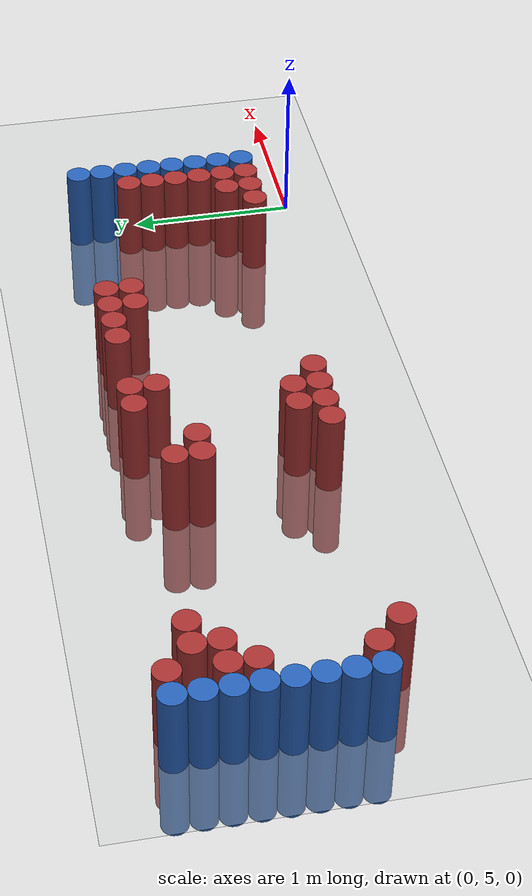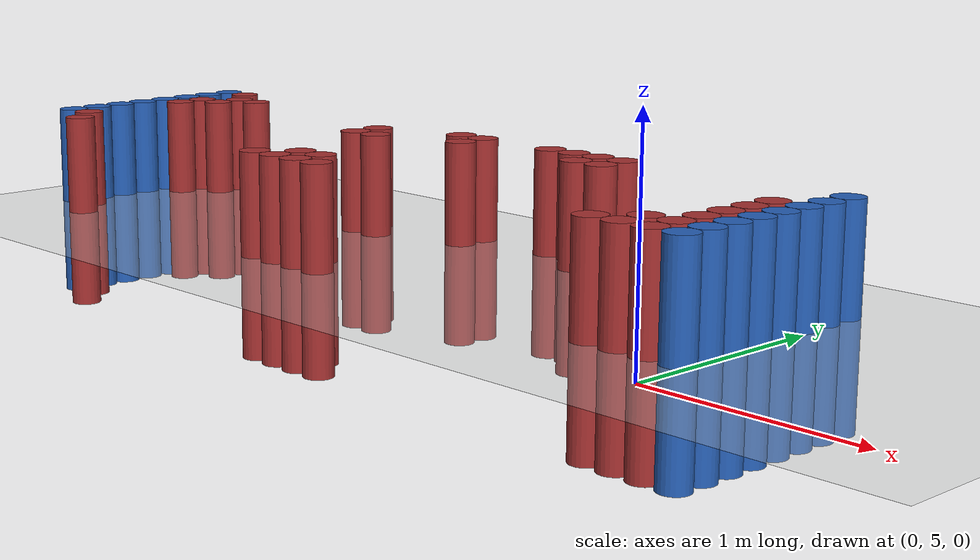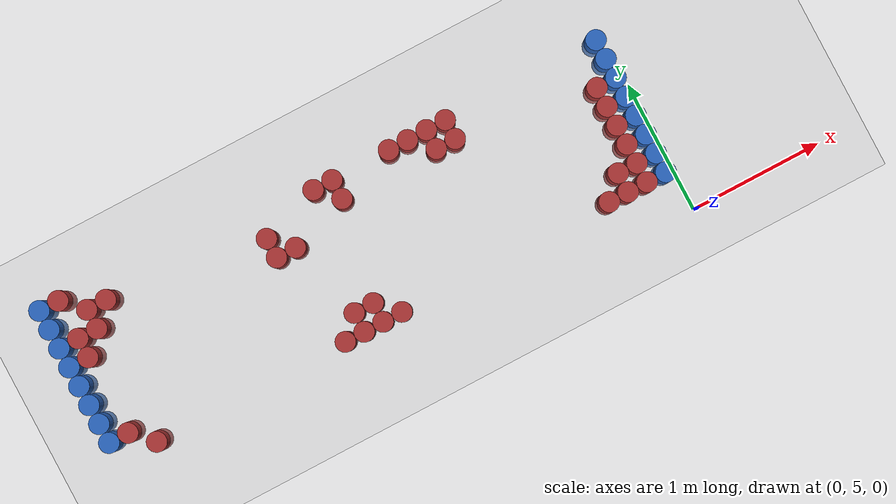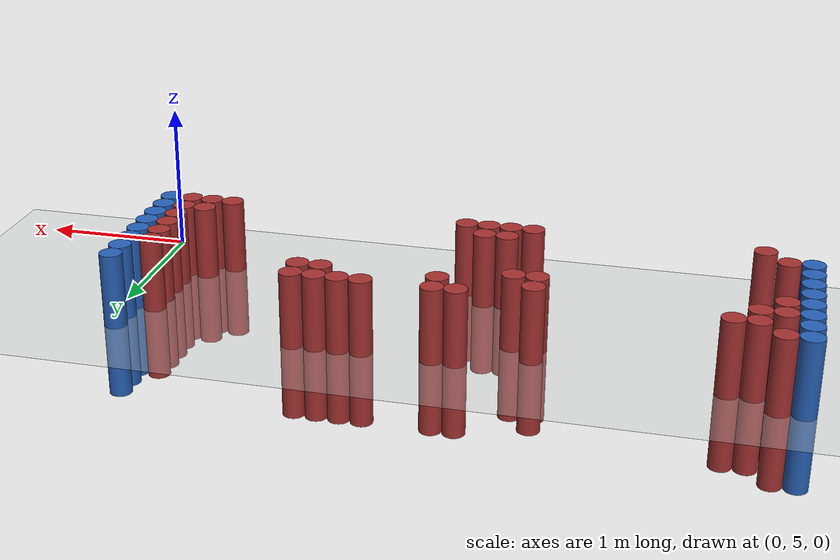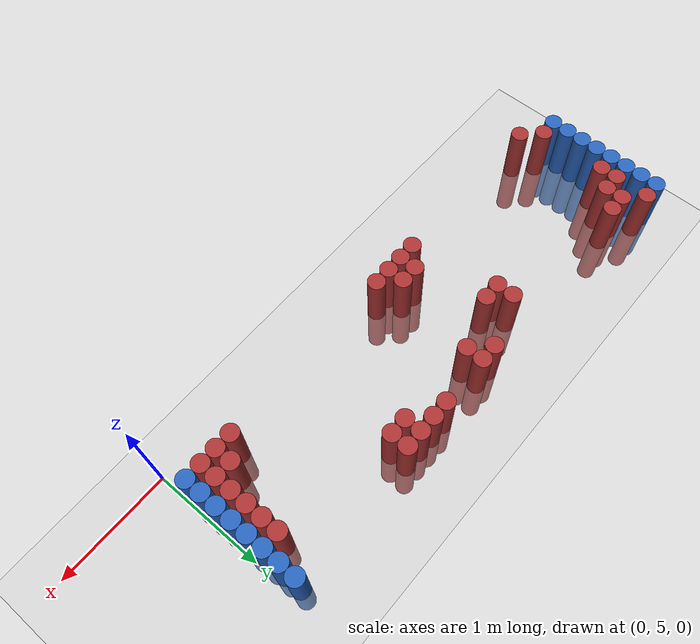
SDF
<sdf version="1.6">
 <world name="default">
  <model name="ground_plane">
   <static>1</static>
   <link name="link">
    <collision name="collision">
     <geometry><plane><normal>0 0 1</normal><size>100 100</size></plane></geometry>
     <surface><friction><ode><mu>100</mu><mu2>50</mu2></ode></friction></surface>
    </collision>
    <visual name="visual">
     <cast_shadows>0</cast_shadows>
     <geometry><plane><normal>0 0 1</normal><size>100 100</size></plane></geometry>
     <material>
      <script><uri>file://media/materials/scripts/gazebo.material</uri><name>Gazebo/Grey</name></script>
     </material>
    </visual>
   </link>
  </model>
  <model name="unit_cylinder_98">
   <static>1</static>
   <pose>-4.425000 5.475000 0.000000 0.000000 0.000000 0.000000</pose>
   <link name="link">
    <inertial>
     <mass>1</mass>
     <inertia><ixx>0.145833</ixx><ixy>0</ixy><ixz>0</ixz><iyy>0.145833</iyy><iyz>0</iyz><izz>0.125</izz></inertia>
    </inertial>
    <collision name="collision">
     <geometry><cylinder><radius>0.075000</radius><length>1</length></cylinder></geometry>
    </collision>
    <visual name="visual">
     <geometry><cylinder><radius>0.075000</radius><length>1</length></cylinder></geometry>
     <material>
      <ambient>0.152000 0.379000 0.720000 1</ambient>
      <diffuse>0.152000 0.379000 0.720000 1</diffuse>
     </material>
     <material>
      <script><name>Gazebo/Grey</name><uri>file://media/materials/scripts/gazebo.material</uri></script>
     </material>
    </visual>
   </link>
  </model>
  <model name="unit_cylinder_99">
   <static>1</static>
   <pose>-4.425000 5.625000 0.000000 0.000000 0.000000 0.000000</pose>
   <link name="link">
    <inertial>
     <mass>1</mass>
     <inertia><ixx>0.145833</ixx><ixy>0</ixy><ixz>0</ixz><iyy>0.145833</iyy><iyz>0</iyz><izz>0.125</izz></inertia>
    </inertial>
    <collision name="collision">
     <geometry><cylinder><radius>0.075000</radius><length>1</length></cylinder></geometry>
    </collision>
    <visual name="visual">
     <geometry><cylinder><radius>0.075000</radius><length>1</length></cylinder></geometry>
     <material>
      <ambient>0.152000 0.379000 0.720000 1</ambient>
      <diffuse>0.152000 0.379000 0.720000 1</diffuse>
     </material>
     <material>
      <script><name>Gazebo/Grey</name><uri>file://media/materials/scripts/gazebo.material</uri></script>
     </material>
    </visual>
   </link>
  </model>
  <model name="unit_cylinder_100">
   <static>1</static>
   <pose>-4.425000 5.775000 0.000000 0.000000 0.000000 0.000000</pose>
   <link name="link">
    <inertial>
     <mass>1</mass>
     <inertia><ixx>0.145833</ixx><ixy>0</ixy><ixz>0</ixz><iyy>0.145833</iyy><iyz>0</iyz><izz>0.125</izz></inertia>
    </inertial>
    <collision name="collision">
     <geometry><cylinder><radius>0.075000</radius><length>1</length></cylinder></geometry>
    </collision>
    <visual name="visual">
     <geometry><cylinder><radius>0.075000</radius><length>1</length></cylinder></geometry>
     <material>
      <ambient>0.152000 0.379000 0.720000 1</ambient>
      <diffuse>0.152000 0.379000 0.720000 1</diffuse>
     </material>
     <material>
      <script><name>Gazebo/Grey</name><uri>file://media/materials/scripts/gazebo.material</uri></script>
     </material>
    </visual>
   </link>
  </model>
  <model name="unit_cylinder_101">
   <static>1</static>
   <pose>-4.425000 5.925000 0.000000 0.000000 0.000000 0.000000</pose>
   <link name="link">
    <inertial>
     <mass>1</mass>
     <inertia><ixx>0.145833</ixx><ixy>0</ixy><ixz>0</ixz><iyy>0.145833</iyy><iyz>0</iyz><izz>0.125</izz></inertia>
    </inertial>
    <collision name="collision">
     <geometry><cylinder><radius>0.075000</radius><length>1</length></cylinder></geometry>
    </collision>
    <visual name="visual">
     <geometry><cylinder><radius>0.075000</radius><length>1</length></cylinder></geometry>
     <material>
      <ambient>0.152000 0.379000 0.720000 1</ambient>
      <diffuse>0.152000 0.379000 0.720000 1</diffuse>
     </material>
     <material>
      <script><name>Gazebo/Grey</name><uri>file://media/materials/scripts/gazebo.material</uri></script>
     </material>
    </visual>
   </link>
  </model>
  <model name="unit_cylinder_102">
   <static>1</static>
   <pose>-4.425000 6.075000 0.000000 0.000000 0.000000 0.000000</pose>
   <link name="link">
    <inertial>
     <mass>1</mass>
     <inertia><ixx>0.145833</ixx><ixy>0</ixy><ixz>0</ixz><iyy>0.145833</iyy><iyz>0</iyz><izz>0.125</izz></inertia>
    </inertial>
    <collision name="collision">
     <geometry><cylinder><radius>0.075000</radius><length>1</length></cylinder></geometry>
    </collision>
    <visual name="visual">
     <geometry><cylinder><radius>0.075000</radius><length>1</length></cylinder></geometry>
     <material>
      <ambient>0.152000 0.379000 0.720000 1</ambient>
      <diffuse>0.152000 0.379000 0.720000 1</diffuse>
     </material>
     <material>
      <script><name>Gazebo/Grey</name><uri>file://media/materials/scripts/gazebo.material</uri></script>
     </material>
    </visual>
   </link>
  </model>
  <model name="unit_cylinder_103">
   <static>1</static>
   <pose>-4.425000 6.225000 0.000000 0.000000 0.000000 0.000000</pose>
   <link name="link">
    <inertial>
     <mass>1</mass>
     <inertia><ixx>0.145833</ixx><ixy>0</ixy><ixz>0</ixz><iyy>0.145833</iyy><iyz>0</iyz><izz>0.125</izz></inertia>
    </inertial>
    <collision name="collision">
     <geometry><cylinder><radius>0.075000</radius><length>1</length></cylinder></geometry>
    </collision>
    <visual name="visual">
     <geometry><cylinder><radius>0.075000</radius><length>1</length></cylinder></geometry>
     <material>
      <ambient>0.152000 0.379000 0.720000 1</ambient>
      <diffuse>0.152000 0.379000 0.720000 1</diffuse>
     </material>
     <material>
      <script><name>Gazebo/Grey</name><uri>file://media/materials/scripts/gazebo.material</uri></script>
     </material>
    </visual>
   </link>
  </model>
  <model name="unit_cylinder_104">
   <static>1</static>
   <pose>-4.425000 6.375000 0.000000 0.000000 0.000000 0.000000</pose>
   <link name="link">
    <inertial>
     <mass>1</mass>
     <inertia><ixx>0.145833</ixx><ixy>0</ixy><ixz>0</ixz><iyy>0.145833</iyy><iyz>0</iyz><izz>0.125</izz></inertia>
    </inertial>
    <collision name="collision">
     <geometry><cylinder><radius>0.075000</radius><length>1</length></cylinder></geometry>
    </collision>
    <visual name="visual">
     <geometry><cylinder><radius>0.075000</radius><length>1</length></cylinder></geometry>
     <material>
      <ambient>0.152000 0.379000 0.720000 1</ambient>
      <diffuse>0.152000 0.379000 0.720000 1</diffuse>
     </material>
     <material>
      <script><name>Gazebo/Grey</name><uri>file://media/materials/scripts/gazebo.material</uri></script>
     </material>
    </visual>
   </link>
  </model>
  <model name="unit_cylinder_105">
   <static>1</static>
   <pose>-4.425000 6.525000 0.000000 0.000000 0.000000 0.000000</pose>
   <link name="link">
    <inertial>
     <mass>1</mass>
     <inertia><ixx>0.145833</ixx><ixy>0</ixy><ixz>0</ixz><iyy>0.145833</iyy><iyz>0</iyz><izz>0.125</izz></inertia>
    </inertial>
    <collision name="collision">
     <geometry><cylinder><radius>0.075000</radius><length>1</length></cylinder></geometry>
    </collision>
    <visual name="visual">
     <geometry><cylinder><radius>0.075000</radius><length>1</length></cylinder></geometry>
     <material>
      <ambient>0.152000 0.379000 0.720000 1</ambient>
      <diffuse>0.152000 0.379000 0.720000 1</diffuse>
     </material>
     <material>
      <script><name>Gazebo/Grey</name><uri>file://media/materials/scripts/gazebo.material</uri></script>
     </material>
    </visual>
   </link>
  </model>
  <model name="unit_cylinder_128">
   <static>1</static>
   <pose>-4.275000 5.475000 0.000000 0.000000 0.000000 0.000000</pose>
   <link name="link">
    <inertial>
     <mass>1</mass>
     <inertia><ixx>0.145833</ixx><ixy>0</ixy><ixz>0</ixz><iyy>0.145833</iyy><iyz>0</iyz><izz>0.125</izz></inertia>
    </inertial>
    <collision name="collision">
     <geometry><cylinder><radius>0.075000</radius><length>1</length></cylinder></geometry>
    </collision>
    <visual name="visual">
     <geometry><cylinder><radius>0.075000</radius><length>1</length></cylinder></geometry>
     <material>
      <ambient>0.648000 0.192000 0.192000 1</ambient>
      <diffuse>0.648000 0.192000 0.192000 1</diffuse>
     </material>
     <material>
      <script><name>Gazebo/Grey</name><uri>file://media/materials/scripts/gazebo.material</uri></script>
     </material>
    </visual>
   </link>
  </model>
  <model name="unit_cylinder_129">
   <static>1</static>
   <pose>-4.275000 6.075000 0.000000 0.000000 0.000000 0.000000</pose>
   <link name="link">
    <inertial>
     <mass>1</mass>
     <inertia><ixx>0.145833</ixx><ixy>0</ixy><ixz>0</ixz><iyy>0.145833</iyy><iyz>0</iyz><izz>0.125</izz></inertia>
    </inertial>
    <collision name="collision">
     <geometry><cylinder><radius>0.075000</radius><length>1</length></cylinder></geometry>
    </collision>
    <visual name="visual">
     <geometry><cylinder><radius>0.075000</radius><length>1</length></cylinder></geometry>
     <material>
      <ambient>0.648000 0.192000 0.192000 1</ambient>
      <diffuse>0.648000 0.192000 0.192000 1</diffuse>
     </material>
     <material>
      <script><name>Gazebo/Grey</name><uri>file://media/materials/scripts/gazebo.material</uri></script>
     </material>
    </visual>
   </link>
  </model>
  <model name="unit_cylinder_130">
   <static>1</static>
   <pose>-4.275000 6.225000 0.000000 0.000000 0.000000 0.000000</pose>
   <link name="link">
    <inertial>
     <mass>1</mass>
     <inertia><ixx>0.145833</ixx><ixy>0</ixy><ixz>0</ixz><iyy>0.145833</iyy><iyz>0</iyz><izz>0.125</izz></inertia>
    </inertial>
    <collision name="collision">
     <geometry><cylinder><radius>0.075000</radius><length>1</length></cylinder></geometry>
    </collision>
    <visual name="visual">
     <geometry><cylinder><radius>0.075000</radius><length>1</length></cylinder></geometry>
     <material>
      <ambient>0.648000 0.192000 0.192000 1</ambient>
      <diffuse>0.648000 0.192000 0.192000 1</diffuse>
     </material>
     <material>
      <script><name>Gazebo/Grey</name><uri>file://media/materials/scripts/gazebo.material</uri></script>
     </material>
    </visual>
   </link>
  </model>
  <model name="unit_cylinder_131">
   <static>1</static>
   <pose>-4.275000 6.525000 0.000000 0.000000 0.000000 0.000000</pose>
   <link name="link">
    <inertial>
     <mass>1</mass>
     <inertia><ixx>0.145833</ixx><ixy>0</ixy><ixz>0</ixz><iyy>0.145833</iyy><iyz>0</iyz><izz>0.125</izz></inertia>
    </inertial>
    <collision name="collision">
     <geometry><cylinder><radius>0.075000</radius><length>1</length></cylinder></geometry>
    </collision>
    <visual name="visual">
     <geometry><cylinder><radius>0.075000</radius><length>1</length></cylinder></geometry>
     <material>
      <ambient>0.648000 0.192000 0.192000 1</ambient>
      <diffuse>0.648000 0.192000 0.192000 1</diffuse>
     </material>
     <material>
      <script><name>Gazebo/Grey</name><uri>file://media/materials/scripts/gazebo.material</uri></script>
     </material>
    </visual>
   </link>
  </model>
  <model name="unit_cylinder_143">
   <static>1</static>
   <pose>-4.125000 5.325000 0.000000 0.000000 0.000000 0.000000</pose>
   <link name="link">
    <inertial>
     <mass>1</mass>
     <inertia><ixx>0.145833</ixx><ixy>0</ixy><ixz>0</ixz><iyy>0.145833</iyy><iyz>0</iyz><izz>0.125</izz></inertia>
    </inertial>
    <collision name="collision">
     <geometry><cylinder><radius>0.075000</radius><length>1</length></cylinder></geometry>
    </collision>
    <visual name="visual">
     <geometry><cylinder><radius>0.075000</radius><length>1</length></cylinder></geometry>
     <material>
      <ambient>0.648000 0.192000 0.192000 1</ambient>
      <diffuse>0.648000 0.192000 0.192000 1</diffuse>
     </material>
     <material>
      <script><name>Gazebo/Grey</name><uri>file://media/materials/scripts/gazebo.material</uri></script>
     </material>
    </visual>
   </link>
  </model>
  <model name="unit_cylinder_144">
   <static>1</static>
   <pose>-4.125000 6.225000 0.000000 0.000000 0.000000 0.000000</pose>
   <link name="link">
    <inertial>
     <mass>1</mass>
     <inertia><ixx>0.145833</ixx><ixy>0</ixy><ixz>0</ixz><iyy>0.145833</iyy><iyz>0</iyz><izz>0.125</izz></inertia>
    </inertial>
    <collision name="collision">
     <geometry><cylinder><radius>0.075000</radius><length>1</length></cylinder></geometry>
    </collision>
    <visual name="visual">
     <geometry><cylinder><radius>0.075000</radius><length>1</length></cylinder></geometry>
     <material>
      <ambient>0.648000 0.192000 0.192000 1</ambient>
      <diffuse>0.648000 0.192000 0.192000 1</diffuse>
     </material>
     <material>
      <script><name>Gazebo/Grey</name><uri>file://media/materials/scripts/gazebo.material</uri></script>
     </material>
    </visual>
   </link>
  </model>
  <model name="unit_cylinder_145">
   <static>1</static>
   <pose>-4.125000 6.375000 0.000000 0.000000 0.000000 0.000000</pose>
   <link name="link">
    <inertial>
     <mass>1</mass>
     <inertia><ixx>0.145833</ixx><ixy>0</ixy><ixz>0</ixz><iyy>0.145833</iyy><iyz>0</iyz><izz>0.125</izz></inertia>
    </inertial>
    <collision name="collision">
     <geometry><cylinder><radius>0.075000</radius><length>1</length></cylinder></geometry>
    </collision>
    <visual name="visual">
     <geometry><cylinder><radius>0.075000</radius><length>1</length></cylinder></geometry>
     <material>
      <ambient>0.648000 0.192000 0.192000 1</ambient>
      <diffuse>0.648000 0.192000 0.192000 1</diffuse>
     </material>
     <material>
      <script><name>Gazebo/Grey</name><uri>file://media/materials/scripts/gazebo.material</uri></script>
     </material>
    </visual>
   </link>
  </model>
  <model name="unit_cylinder_151">
   <static>1</static>
   <pose>-3.975000 6.375000 0.000000 0.000000 0.000000 0.000000</pose>
   <link name="link">
    <inertial>
     <mass>1</mass>
     <inertia><ixx>0.145833</ixx><ixy>0</ixy><ixz>0</ixz><iyy>0.145833</iyy><iyz>0</iyz><izz>0.125</izz></inertia>
    </inertial>
    <collision name="collision">
     <geometry><cylinder><radius>0.075000</radius><length>1</length></cylinder></geometry>
    </collision>
    <visual name="visual">
     <geometry><cylinder><radius>0.075000</radius><length>1</length></cylinder></geometry>
     <material>
      <ambient>0.648000 0.192000 0.192000 1</ambient>
      <diffuse>0.648000 0.192000 0.192000 1</diffuse>
     </material>
     <material>
      <script><name>Gazebo/Grey</name><uri>file://media/materials/scripts/gazebo.material</uri></script>
     </material>
    </visual>
   </link>
  </model>
  <model name="unit_cylinder_185">
   <static>1</static>
   <pose>-2.775000 6.075000 0.000000 0.000000 0.000000 0.000000</pose>
   <link name="link">
    <inertial>
     <mass>1</mass>
     <inertia><ixx>0.145833</ixx><ixy>0</ixy><ixz>0</ixz><iyy>0.145833</iyy><iyz>0</iyz><izz>0.125</izz></inertia>
    </inertial>
    <collision name="collision">
     <geometry><cylinder><radius>0.075000</radius><length>1</length></cylinder></geometry>
    </collision>
    <visual name="visual">
     <geometry><cylinder><radius>0.075000</radius><length>1</length></cylinder></geometry>
     <material>
      <ambient>0.648000 0.192000 0.192000 1</ambient>
      <diffuse>0.648000 0.192000 0.192000 1</diffuse>
     </material>
     <material>
      <script><name>Gazebo/Grey</name><uri>file://media/materials/scripts/gazebo.material</uri></script>
     </material>
    </visual>
   </link>
  </model>
  <model name="unit_cylinder_186">
   <static>1</static>
   <pose>-2.775000 6.225000 0.000000 0.000000 0.000000 0.000000</pose>
   <link name="link">
    <inertial>
     <mass>1</mass>
     <inertia><ixx>0.145833</ixx><ixy>0</ixy><ixz>0</ixz><iyy>0.145833</iyy><iyz>0</iyz><izz>0.125</izz></inertia>
    </inertial>
    <collision name="collision">
     <geometry><cylinder><radius>0.075000</radius><length>1</length></cylinder></geometry>
    </collision>
    <visual name="visual">
     <geometry><cylinder><radius>0.075000</radius><length>1</length></cylinder></geometry>
     <material>
      <ambient>0.648000 0.192000 0.192000 1</ambient>
      <diffuse>0.648000 0.192000 0.192000 1</diffuse>
     </material>
     <material>
      <script><name>Gazebo/Grey</name><uri>file://media/materials/scripts/gazebo.material</uri></script>
     </material>
    </visual>
   </link>
  </model>
  <model name="unit_cylinder_188">
   <static>1</static>
   <pose>-2.625000 5.325000 0.000000 0.000000 0.000000 0.000000</pose>
   <link name="link">
    <inertial>
     <mass>1</mass>
     <inertia><ixx>0.145833</ixx><ixy>0</ixy><ixz>0</ixz><iyy>0.145833</iyy><iyz>0</iyz><izz>0.125</izz></inertia>
    </inertial>
    <collision name="collision">
     <geometry><cylinder><radius>0.075000</radius><length>1</length></cylinder></geometry>
    </collision>
    <visual name="visual">
     <geometry><cylinder><radius>0.075000</radius><length>1</length></cylinder></geometry>
     <material>
      <ambient>0.648000 0.192000 0.192000 1</ambient>
      <diffuse>0.648000 0.192000 0.192000 1</diffuse>
     </material>
     <material>
      <script><name>Gazebo/Grey</name><uri>file://media/materials/scripts/gazebo.material</uri></script>
     </material>
    </visual>
   </link>
  </model>
  <model name="unit_cylinder_189">
   <static>1</static>
   <pose>-2.625000 6.075000 0.000000 0.000000 0.000000 0.000000</pose>
   <link name="link">
    <inertial>
     <mass>1</mass>
     <inertia><ixx>0.145833</ixx><ixy>0</ixy><ixz>0</ixz><iyy>0.145833</iyy><iyz>0</iyz><izz>0.125</izz></inertia>
    </inertial>
    <collision name="collision">
     <geometry><cylinder><radius>0.075000</radius><length>1</length></cylinder></geometry>
    </collision>
    <visual name="visual">
     <geometry><cylinder><radius>0.075000</radius><length>1</length></cylinder></geometry>
     <material>
      <ambient>0.648000 0.192000 0.192000 1</ambient>
      <diffuse>0.648000 0.192000 0.192000 1</diffuse>
     </material>
     <material>
      <script><name>Gazebo/Grey</name><uri>file://media/materials/scripts/gazebo.material</uri></script>
     </material>
    </visual>
   </link>
  </model>
  <model name="unit_cylinder_192">
   <static>1</static>
   <pose>-2.475000 5.325000 0.000000 0.000000 0.000000 0.000000</pose>
   <link name="link">
    <inertial>
     <mass>1</mass>
     <inertia><ixx>0.145833</ixx><ixy>0</ixy><ixz>0</ixz><iyy>0.145833</iyy><iyz>0</iyz><izz>0.125</izz></inertia>
    </inertial>
    <collision name="collision">
     <geometry><cylinder><radius>0.075000</radius><length>1</length></cylinder></geometry>
    </collision>
    <visual name="visual">
     <geometry><cylinder><radius>0.075000</radius><length>1</length></cylinder></geometry>
     <material>
      <ambient>0.648000 0.192000 0.192000 1</ambient>
      <diffuse>0.648000 0.192000 0.192000 1</diffuse>
     </material>
     <material>
      <script><name>Gazebo/Grey</name><uri>file://media/materials/scripts/gazebo.material</uri></script>
     </material>
    </visual>
   </link>
  </model>
  <model name="unit_cylinder_193">
   <static>1</static>
   <pose>-2.475000 5.475000 0.000000 0.000000 0.000000 0.000000</pose>
   <link name="link">
    <inertial>
     <mass>1</mass>
     <inertia><ixx>0.145833</ixx><ixy>0</ixy><ixz>0</ixz><iyy>0.145833</iyy><iyz>0</iyz><izz>0.125</izz></inertia>
    </inertial>
    <collision name="collision">
     <geometry><cylinder><radius>0.075000</radius><length>1</length></cylinder></geometry>
    </collision>
    <visual name="visual">
     <geometry><cylinder><radius>0.075000</radius><length>1</length></cylinder></geometry>
     <material>
      <ambient>0.648000 0.192000 0.192000 1</ambient>
      <diffuse>0.648000 0.192000 0.192000 1</diffuse>
     </material>
     <material>
      <script><name>Gazebo/Grey</name><uri>file://media/materials/scripts/gazebo.material</uri></script>
     </material>
    </visual>
   </link>
  </model>
  <model name="unit_cylinder_199">
   <static>1</static>
   <pose>-2.325000 5.325000 0.000000 0.000000 0.000000 0.000000</pose>
   <link name="link">
    <inertial>
     <mass>1</mass>
     <inertia><ixx>0.145833</ixx><ixy>0</ixy><ixz>0</ixz><iyy>0.145833</iyy><iyz>0</iyz><izz>0.125</izz></inertia>
    </inertial>
    <collision name="collision">
     <geometry><cylinder><radius>0.075000</radius><length>1</length></cylinder></geometry>
    </collision>
    <visual name="visual">
     <geometry><cylinder><radius>0.075000</radius><length>1</length></cylinder></geometry>
     <material>
      <ambient>0.648000 0.192000 0.192000 1</ambient>
      <diffuse>0.648000 0.192000 0.192000 1</diffuse>
     </material>
     <material>
      <script><name>Gazebo/Grey</name><uri>file://media/materials/scripts/gazebo.material</uri></script>
     </material>
    </visual>
   </link>
  </model>
  <model name="unit_cylinder_200">
   <static>1</static>
   <pose>-2.325000 5.475000 0.000000 0.000000 0.000000 0.000000</pose>
   <link name="link">
    <inertial>
     <mass>1</mass>
     <inertia><ixx>0.145833</ixx><ixy>0</ixy><ixz>0</ixz><iyy>0.145833</iyy><iyz>0</iyz><izz>0.125</izz></inertia>
    </inertial>
    <collision name="collision">
     <geometry><cylinder><radius>0.075000</radius><length>1</length></cylinder></geometry>
    </collision>
    <visual name="visual">
     <geometry><cylinder><radius>0.075000</radius><length>1</length></cylinder></geometry>
     <material>
      <ambient>0.648000 0.192000 0.192000 1</ambient>
      <diffuse>0.648000 0.192000 0.192000 1</diffuse>
     </material>
     <material>
      <script><name>Gazebo/Grey</name><uri>file://media/materials/scripts/gazebo.material</uri></script>
     </material>
    </visual>
   </link>
  </model>
  <model name="unit_cylinder_201">
   <static>1</static>
   <pose>-2.325000 6.375000 0.000000 0.000000 0.000000 0.000000</pose>
   <link name="link">
    <inertial>
     <mass>1</mass>
     <inertia><ixx>0.145833</ixx><ixy>0</ixy><ixz>0</ixz><iyy>0.145833</iyy><iyz>0</iyz><izz>0.125</izz></inertia>
    </inertial>
    <collision name="collision">
     <geometry><cylinder><radius>0.075000</radius><length>1</length></cylinder></geometry>
    </collision>
    <visual name="visual">
     <geometry><cylinder><radius>0.075000</radius><length>1</length></cylinder></geometry>
     <material>
      <ambient>0.648000 0.192000 0.192000 1</ambient>
      <diffuse>0.648000 0.192000 0.192000 1</diffuse>
     </material>
     <material>
      <script><name>Gazebo/Grey</name><uri>file://media/materials/scripts/gazebo.material</uri></script>
     </material>
    </visual>
   </link>
  </model>
  <model name="unit_cylinder_208">
   <static>1</static>
   <pose>-2.175000 5.325000 0.000000 0.000000 0.000000 0.000000</pose>
   <link name="link">
    <inertial>
     <mass>1</mass>
     <inertia><ixx>0.145833</ixx><ixy>0</ixy><ixz>0</ixz><iyy>0.145833</iyy><iyz>0</iyz><izz>0.125</izz></inertia>
    </inertial>
    <collision name="collision">
     <geometry><cylinder><radius>0.075000</radius><length>1</length></cylinder></geometry>
    </collision>
    <visual name="visual">
     <geometry><cylinder><radius>0.075000</radius><length>1</length></cylinder></geometry>
     <material>
      <ambient>0.648000 0.192000 0.192000 1</ambient>
      <diffuse>0.648000 0.192000 0.192000 1</diffuse>
     </material>
     <material>
      <script><name>Gazebo/Grey</name><uri>file://media/materials/scripts/gazebo.material</uri></script>
     </material>
    </visual>
   </link>
  </model>
  <model name="unit_cylinder_209">
   <static>1</static>
   <pose>-2.175000 6.225000 0.000000 0.000000 0.000000 0.000000</pose>
   <link name="link">
    <inertial>
     <mass>1</mass>
     <inertia><ixx>0.145833</ixx><ixy>0</ixy><ixz>0</ixz><iyy>0.145833</iyy><iyz>0</iyz><izz>0.125</izz></inertia>
    </inertial>
    <collision name="collision">
     <geometry><cylinder><radius>0.075000</radius><length>1</length></cylinder></geometry>
    </collision>
    <visual name="visual">
     <geometry><cylinder><radius>0.075000</radius><length>1</length></cylinder></geometry>
     <material>
      <ambient>0.648000 0.192000 0.192000 1</ambient>
      <diffuse>0.648000 0.192000 0.192000 1</diffuse>
     </material>
     <material>
      <script><name>Gazebo/Grey</name><uri>file://media/materials/scripts/gazebo.material</uri></script>
     </material>
    </visual>
   </link>
  </model>
  <model name="unit_cylinder_210">
   <static>1</static>
   <pose>-2.175000 6.375000 0.000000 0.000000 0.000000 0.000000</pose>
   <link name="link">
    <inertial>
     <mass>1</mass>
     <inertia><ixx>0.145833</ixx><ixy>0</ixy><ixz>0</ixz><iyy>0.145833</iyy><iyz>0</iyz><izz>0.125</izz></inertia>
    </inertial>
    <collision name="collision">
     <geometry><cylinder><radius>0.075000</radius><length>1</length></cylinder></geometry>
    </collision>
    <visual name="visual">
     <geometry><cylinder><radius>0.075000</radius><length>1</length></cylinder></geometry>
     <material>
      <ambient>0.648000 0.192000 0.192000 1</ambient>
      <diffuse>0.648000 0.192000 0.192000 1</diffuse>
     </material>
     <material>
      <script><name>Gazebo/Grey</name><uri>file://media/materials/scripts/gazebo.material</uri></script>
     </material>
    </visual>
   </link>
  </model>
  <model name="unit_cylinder_232">
   <static>1</static>
   <pose>-1.725000 6.375000 0.000000 0.000000 0.000000 0.000000</pose>
   <link name="link">
    <inertial>
     <mass>1</mass>
     <inertia><ixx>0.145833</ixx><ixy>0</ixy><ixz>0</ixz><iyy>0.145833</iyy><iyz>0</iyz><izz>0.125</izz></inertia>
    </inertial>
    <collision name="collision">
     <geometry><cylinder><radius>0.075000</radius><length>1</length></cylinder></geometry>
    </collision>
    <visual name="visual">
     <geometry><cylinder><radius>0.075000</radius><length>1</length></cylinder></geometry>
     <material>
      <ambient>0.648000 0.192000 0.192000 1</ambient>
      <diffuse>0.648000 0.192000 0.192000 1</diffuse>
     </material>
     <material>
      <script><name>Gazebo/Grey</name><uri>file://media/materials/scripts/gazebo.material</uri></script>
     </material>
    </visual>
   </link>
  </model>
  <model name="unit_cylinder_238">
   <static>1</static>
   <pose>-1.575000 6.375000 0.000000 0.000000 0.000000 0.000000</pose>
   <link name="link">
    <inertial>
     <mass>1</mass>
     <inertia><ixx>0.145833</ixx><ixy>0</ixy><ixz>0</ixz><iyy>0.145833</iyy><iyz>0</iyz><izz>0.125</izz></inertia>
    </inertial>
    <collision name="collision">
     <geometry><cylinder><radius>0.075000</radius><length>1</length></cylinder></geometry>
    </collision>
    <visual name="visual">
     <geometry><cylinder><radius>0.075000</radius><length>1</length></cylinder></geometry>
     <material>
      <ambient>0.648000 0.192000 0.192000 1</ambient>
      <diffuse>0.648000 0.192000 0.192000 1</diffuse>
     </material>
     <material>
      <script><name>Gazebo/Grey</name><uri>file://media/materials/scripts/gazebo.material</uri></script>
     </material>
    </visual>
   </link>
  </model>
  <model name="unit_cylinder_245">
   <static>1</static>
   <pose>-1.425000 6.225000 0.000000 0.000000 0.000000 0.000000</pose>
   <link name="link">
    <inertial>
     <mass>1</mass>
     <inertia><ixx>0.145833</ixx><ixy>0</ixy><ixz>0</ixz><iyy>0.145833</iyy><iyz>0</iyz><izz>0.125</izz></inertia>
    </inertial>
    <collision name="collision">
     <geometry><cylinder><radius>0.075000</radius><length>1</length></cylinder></geometry>
    </collision>
    <visual name="visual">
     <geometry><cylinder><radius>0.075000</radius><length>1</length></cylinder></geometry>
     <material>
      <ambient>0.648000 0.192000 0.192000 1</ambient>
      <diffuse>0.648000 0.192000 0.192000 1</diffuse>
     </material>
     <material>
      <script><name>Gazebo/Grey</name><uri>file://media/materials/scripts/gazebo.material</uri></script>
     </material>
    </visual>
   </link>
  </model>
  <model name="unit_cylinder_246">
   <static>1</static>
   <pose>-1.425000 6.375000 0.000000 0.000000 0.000000 0.000000</pose>
   <link name="link">
    <inertial>
     <mass>1</mass>
     <inertia><ixx>0.145833</ixx><ixy>0</ixy><ixz>0</ixz><iyy>0.145833</iyy><iyz>0</iyz><izz>0.125</izz></inertia>
    </inertial>
    <collision name="collision">
     <geometry><cylinder><radius>0.075000</radius><length>1</length></cylinder></geometry>
    </collision>
    <visual name="visual">
     <geometry><cylinder><radius>0.075000</radius><length>1</length></cylinder></geometry>
     <material>
      <ambient>0.648000 0.192000 0.192000 1</ambient>
      <diffuse>0.648000 0.192000 0.192000 1</diffuse>
     </material>
     <material>
      <script><name>Gazebo/Grey</name><uri>file://media/materials/scripts/gazebo.material</uri></script>
     </material>
    </visual>
   </link>
  </model>
  <model name="unit_cylinder_252">
   <static>1</static>
   <pose>-1.275000 6.225000 0.000000 0.000000 0.000000 0.000000</pose>
   <link name="link">
    <inertial>
     <mass>1</mass>
     <inertia><ixx>0.145833</ixx><ixy>0</ixy><ixz>0</ixz><iyy>0.145833</iyy><iyz>0</iyz><izz>0.125</izz></inertia>
    </inertial>
    <collision name="collision">
     <geometry><cylinder><radius>0.075000</radius><length>1</length></cylinder></geometry>
    </collision>
    <visual name="visual">
     <geometry><cylinder><radius>0.075000</radius><length>1</length></cylinder></geometry>
     <material>
      <ambient>0.648000 0.192000 0.192000 1</ambient>
      <diffuse>0.648000 0.192000 0.192000 1</diffuse>
     </material>
     <material>
      <script><name>Gazebo/Grey</name><uri>file://media/materials/scripts/gazebo.material</uri></script>
     </material>
    </visual>
   </link>
  </model>
  <model name="unit_cylinder_253">
   <static>1</static>
   <pose>-1.275000 6.375000 0.000000 0.000000 0.000000 0.000000</pose>
   <link name="link">
    <inertial>
     <mass>1</mass>
     <inertia><ixx>0.145833</ixx><ixy>0</ixy><ixz>0</ixz><iyy>0.145833</iyy><iyz>0</iyz><izz>0.125</izz></inertia>
    </inertial>
    <collision name="collision">
     <geometry><cylinder><radius>0.075000</radius><length>1</length></cylinder></geometry>
    </collision>
    <visual name="visual">
     <geometry><cylinder><radius>0.075000</radius><length>1</length></cylinder></geometry>
     <material>
      <ambient>0.648000 0.192000 0.192000 1</ambient>
      <diffuse>0.648000 0.192000 0.192000 1</diffuse>
     </material>
     <material>
      <script><name>Gazebo/Grey</name><uri>file://media/materials/scripts/gazebo.material</uri></script>
     </material>
    </visual>
   </link>
  </model>
  <model name="unit_cylinder_257">
   <static>1</static>
   <pose>-0.525000 5.325000 0.000000 0.000000 0.000000 0.000000</pose>
   <link name="link">
    <inertial>
     <mass>1</mass>
     <inertia><ixx>0.145833</ixx><ixy>0</ixy><ixz>0</ixz><iyy>0.145833</iyy><iyz>0</iyz><izz>0.125</izz></inertia>
    </inertial>
    <collision name="collision">
     <geometry><cylinder><radius>0.075000</radius><length>1</length></cylinder></geometry>
    </collision>
    <visual name="visual">
     <geometry><cylinder><radius>0.075000</radius><length>1</length></cylinder></geometry>
     <material>
      <ambient>0.648000 0.192000 0.192000 1</ambient>
      <diffuse>0.648000 0.192000 0.192000 1</diffuse>
     </material>
     <material>
      <script><name>Gazebo/Grey</name><uri>file://media/materials/scripts/gazebo.material</uri></script>
     </material>
    </visual>
   </link>
  </model>
  <model name="unit_cylinder_258">
   <static>1</static>
   <pose>-0.375000 5.325000 0.000000 0.000000 0.000000 0.000000</pose>
   <link name="link">
    <inertial>
     <mass>1</mass>
     <inertia><ixx>0.145833</ixx><ixy>0</ixy><ixz>0</ixz><iyy>0.145833</iyy><iyz>0</iyz><izz>0.125</izz></inertia>
    </inertial>
    <collision name="collision">
     <geometry><cylinder><radius>0.075000</radius><length>1</length></cylinder></geometry>
    </collision>
    <visual name="visual">
     <geometry><cylinder><radius>0.075000</radius><length>1</length></cylinder></geometry>
     <material>
      <ambient>0.648000 0.192000 0.192000 1</ambient>
      <diffuse>0.648000 0.192000 0.192000 1</diffuse>
     </material>
     <material>
      <script><name>Gazebo/Grey</name><uri>file://media/materials/scripts/gazebo.material</uri></script>
     </material>
    </visual>
   </link>
  </model>
  <model name="unit_cylinder_259">
   <static>1</static>
   <pose>-0.375000 5.475000 0.000000 0.000000 0.000000 0.000000</pose>
   <link name="link">
    <inertial>
     <mass>1</mass>
     <inertia><ixx>0.145833</ixx><ixy>0</ixy><ixz>0</ixz><iyy>0.145833</iyy><iyz>0</iyz><izz>0.125</izz></inertia>
    </inertial>
    <collision name="collision">
     <geometry><cylinder><radius>0.075000</radius><length>1</length></cylinder></geometry>
    </collision>
    <visual name="visual">
     <geometry><cylinder><radius>0.075000</radius><length>1</length></cylinder></geometry>
     <material>
      <ambient>0.648000 0.192000 0.192000 1</ambient>
      <diffuse>0.648000 0.192000 0.192000 1</diffuse>
     </material>
     <material>
      <script><name>Gazebo/Grey</name><uri>file://media/materials/scripts/gazebo.material</uri></script>
     </material>
    </visual>
   </link>
  </model>
  <model name="unit_cylinder_263">
   <static>1</static>
   <pose>-0.225000 5.325000 0.000000 0.000000 0.000000 0.000000</pose>
   <link name="link">
    <inertial>
     <mass>1</mass>
     <inertia><ixx>0.145833</ixx><ixy>0</ixy><ixz>0</ixz><iyy>0.145833</iyy><iyz>0</iyz><izz>0.125</izz></inertia>
    </inertial>
    <collision name="collision">
     <geometry><cylinder><radius>0.075000</radius><length>1</length></cylinder></geometry>
    </collision>
    <visual name="visual">
     <geometry><cylinder><radius>0.075000</radius><length>1</length></cylinder></geometry>
     <material>
      <ambient>0.648000 0.192000 0.192000 1</ambient>
      <diffuse>0.648000 0.192000 0.192000 1</diffuse>
     </material>
     <material>
      <script><name>Gazebo/Grey</name><uri>file://media/materials/scripts/gazebo.material</uri></script>
     </material>
    </visual>
   </link>
  </model>
  <model name="unit_cylinder_264">
   <static>1</static>
   <pose>-0.225000 5.475000 0.000000 0.000000 0.000000 0.000000</pose>
   <link name="link">
    <inertial>
     <mass>1</mass>
     <inertia><ixx>0.145833</ixx><ixy>0</ixy><ixz>0</ixz><iyy>0.145833</iyy><iyz>0</iyz><izz>0.125</izz></inertia>
    </inertial>
    <collision name="collision">
     <geometry><cylinder><radius>0.075000</radius><length>1</length></cylinder></geometry>
    </collision>
    <visual name="visual">
     <geometry><cylinder><radius>0.075000</radius><length>1</length></cylinder></geometry>
     <material>
      <ambient>0.648000 0.192000 0.192000 1</ambient>
      <diffuse>0.648000 0.192000 0.192000 1</diffuse>
     </material>
     <material>
      <script><name>Gazebo/Grey</name><uri>file://media/materials/scripts/gazebo.material</uri></script>
     </material>
    </visual>
   </link>
  </model>
  <model name="unit_cylinder_265">
   <static>1</static>
   <pose>-0.225000 5.625000 0.000000 0.000000 0.000000 0.000000</pose>
   <link name="link">
    <inertial>
     <mass>1</mass>
     <inertia><ixx>0.145833</ixx><ixy>0</ixy><ixz>0</ixz><iyy>0.145833</iyy><iyz>0</iyz><izz>0.125</izz></inertia>
    </inertial>
    <collision name="collision">
     <geometry><cylinder><radius>0.075000</radius><length>1</length></cylinder></geometry>
    </collision>
    <visual name="visual">
     <geometry><cylinder><radius>0.075000</radius><length>1</length></cylinder></geometry>
     <material>
      <ambient>0.648000 0.192000 0.192000 1</ambient>
      <diffuse>0.648000 0.192000 0.192000 1</diffuse>
     </material>
     <material>
      <script><name>Gazebo/Grey</name><uri>file://media/materials/scripts/gazebo.material</uri></script>
     </material>
    </visual>
   </link>
  </model>
  <model name="unit_cylinder_266">
   <static>1</static>
   <pose>-0.225000 5.775000 0.000000 0.000000 0.000000 0.000000</pose>
   <link name="link">
    <inertial>
     <mass>1</mass>
     <inertia><ixx>0.145833</ixx><ixy>0</ixy><ixz>0</ixz><iyy>0.145833</iyy><iyz>0</iyz><izz>0.125</izz></inertia>
    </inertial>
    <collision name="collision">
     <geometry><cylinder><radius>0.075000</radius><length>1</length></cylinder></geometry>
    </collision>
    <visual name="visual">
     <geometry><cylinder><radius>0.075000</radius><length>1</length></cylinder></geometry>
     <material>
      <ambient>0.648000 0.192000 0.192000 1</ambient>
      <diffuse>0.648000 0.192000 0.192000 1</diffuse>
     </material>
     <material>
      <script><name>Gazebo/Grey</name><uri>file://media/materials/scripts/gazebo.material</uri></script>
     </material>
    </visual>
   </link>
  </model>
  <model name="unit_cylinder_267">
   <static>1</static>
   <pose>-0.225000 5.925000 0.000000 0.000000 0.000000 0.000000</pose>
   <link name="link">
    <inertial>
     <mass>1</mass>
     <inertia><ixx>0.145833</ixx><ixy>0</ixy><ixz>0</ixz><iyy>0.145833</iyy><iyz>0</iyz><izz>0.125</izz></inertia>
    </inertial>
    <collision name="collision">
     <geometry><cylinder><radius>0.075000</radius><length>1</length></cylinder></geometry>
    </collision>
    <visual name="visual">
     <geometry><cylinder><radius>0.075000</radius><length>1</length></cylinder></geometry>
     <material>
      <ambient>0.648000 0.192000 0.192000 1</ambient>
      <diffuse>0.648000 0.192000 0.192000 1</diffuse>
     </material>
     <material>
      <script><name>Gazebo/Grey</name><uri>file://media/materials/scripts/gazebo.material</uri></script>
     </material>
    </visual>
   </link>
  </model>
  <model name="unit_cylinder_268">
   <static>1</static>
   <pose>-0.225000 6.075000 0.000000 0.000000 0.000000 0.000000</pose>
   <link name="link">
    <inertial>
     <mass>1</mass>
     <inertia><ixx>0.145833</ixx><ixy>0</ixy><ixz>0</ixz><iyy>0.145833</iyy><iyz>0</iyz><izz>0.125</izz></inertia>
    </inertial>
    <collision name="collision">
     <geometry><cylinder><radius>0.075000</radius><length>1</length></cylinder></geometry>
    </collision>
    <visual name="visual">
     <geometry><cylinder><radius>0.075000</radius><length>1</length></cylinder></geometry>
     <material>
      <ambient>0.648000 0.192000 0.192000 1</ambient>
      <diffuse>0.648000 0.192000 0.192000 1</diffuse>
     </material>
     <material>
      <script><name>Gazebo/Grey</name><uri>file://media/materials/scripts/gazebo.material</uri></script>
     </material>
    </visual>
   </link>
  </model>
  <model name="unit_cylinder_281">
   <static>1</static>
   <pose>-0.075000 5.325000 0.000000 0.000000 0.000000 0.000000</pose>
   <link name="link">
    <inertial>
     <mass>1</mass>
     <inertia><ixx>0.145833</ixx><ixy>0</ixy><ixz>0</ixz><iyy>0.145833</iyy><iyz>0</iyz><izz>0.125</izz></inertia>
    </inertial>
    <collision name="collision">
     <geometry><cylinder><radius>0.075000</radius><length>1</length></cylinder></geometry>
    </collision>
    <visual name="visual">
     <geometry><cylinder><radius>0.075000</radius><length>1</length></cylinder></geometry>
     <material>
      <ambient>0.152000 0.379000 0.720000 1</ambient>
      <diffuse>0.152000 0.379000 0.720000 1</diffuse>
     </material>
     <material>
      <script><name>Gazebo/Grey</name><uri>file://media/materials/scripts/gazebo.material</uri></script>
     </material>
    </visual>
   </link>
  </model>
  <model name="unit_cylinder_282">
   <static>1</static>
   <pose>-0.075000 5.475000 0.000000 0.000000 0.000000 0.000000</pose>
   <link name="link">
    <inertial>
     <mass>1</mass>
     <inertia><ixx>0.145833</ixx><ixy>0</ixy><ixz>0</ixz><iyy>0.145833</iyy><iyz>0</iyz><izz>0.125</izz></inertia>
    </inertial>
    <collision name="collision">
     <geometry><cylinder><radius>0.075000</radius><length>1</length></cylinder></geometry>
    </collision>
    <visual name="visual">
     <geometry><cylinder><radius>0.075000</radius><length>1</length></cylinder></geometry>
     <material>
      <ambient>0.152000 0.379000 0.720000 1</ambient>
      <diffuse>0.152000 0.379000 0.720000 1</diffuse>
     </material>
     <material>
      <script><name>Gazebo/Grey</name><uri>file://media/materials/scripts/gazebo.material</uri></script>
     </material>
    </visual>
   </link>
  </model>
  <model name="unit_cylinder_283">
   <static>1</static>
   <pose>-0.075000 5.625000 0.000000 0.000000 0.000000 0.000000</pose>
   <link name="link">
    <inertial>
     <mass>1</mass>
     <inertia><ixx>0.145833</ixx><ixy>0</ixy><ixz>0</ixz><iyy>0.145833</iyy><iyz>0</iyz><izz>0.125</izz></inertia>
    </inertial>
    <collision name="collision">
     <geometry><cylinder><radius>0.075000</radius><length>1</length></cylinder></geometry>
    </collision>
    <visual name="visual">
     <geometry><cylinder><radius>0.075000</radius><length>1</length></cylinder></geometry>
     <material>
      <ambient>0.152000 0.379000 0.720000 1</ambient>
      <diffuse>0.152000 0.379000 0.720000 1</diffuse>
     </material>
     <material>
      <script><name>Gazebo/Grey</name><uri>file://media/materials/scripts/gazebo.material</uri></script>
     </material>
    </visual>
   </link>
  </model>
  <model name="unit_cylinder_284">
   <static>1</static>
   <pose>-0.075000 5.775000 0.000000 0.000000 0.000000 0.000000</pose>
   <link name="link">
    <inertial>
     <mass>1</mass>
     <inertia><ixx>0.145833</ixx><ixy>0</ixy><ixz>0</ixz><iyy>0.145833</iyy><iyz>0</iyz><izz>0.125</izz></inertia>
    </inertial>
    <collision name="collision">
     <geometry><cylinder><radius>0.075000</radius><length>1</length></cylinder></geometry>
    </collision>
    <visual name="visual">
     <geometry><cylinder><radius>0.075000</radius><length>1</length></cylinder></geometry>
     <material>
      <ambient>0.152000 0.379000 0.720000 1</ambient>
      <diffuse>0.152000 0.379000 0.720000 1</diffuse>
     </material>
     <material>
      <script><name>Gazebo/Grey</name><uri>file://media/materials/scripts/gazebo.material</uri></script>
     </material>
    </visual>
   </link>
  </model>
  <model name="unit_cylinder_285">
   <static>1</static>
   <pose>-0.075000 5.925000 0.000000 0.000000 0.000000 0.000000</pose>
   <link name="link">
    <inertial>
     <mass>1</mass>
     <inertia><ixx>0.145833</ixx><ixy>0</ixy><ixz>0</ixz><iyy>0.145833</iyy><iyz>0</iyz><izz>0.125</izz></inertia>
    </inertial>
    <collision name="collision">
     <geometry><cylinder><radius>0.075000</radius><length>1</length></cylinder></geometry>
    </collision>
    <visual name="visual">
     <geometry><cylinder><radius>0.075000</radius><length>1</length></cylinder></geometry>
     <material>
      <ambient>0.152000 0.379000 0.720000 1</ambient>
      <diffuse>0.152000 0.379000 0.720000 1</diffuse>
     </material>
     <material>
      <script><name>Gazebo/Grey</name><uri>file://media/materials/scripts/gazebo.material</uri></script>
     </material>
    </visual>
   </link>
  </model>
  <model name="unit_cylinder_286">
   <static>1</static>
   <pose>-0.075000 6.075000 0.000000 0.000000 0.000000 0.000000</pose>
   <link name="link">
    <inertial>
     <mass>1</mass>
     <inertia><ixx>0.145833</ixx><ixy>0</ixy><ixz>0</ixz><iyy>0.145833</iyy><iyz>0</iyz><izz>0.125</izz></inertia>
    </inertial>
    <collision name="collision">
     <geometry><cylinder><radius>0.075000</radius><length>1</length></cylinder></geometry>
    </collision>
    <visual name="visual">
     <geometry><cylinder><radius>0.075000</radius><length>1</length></cylinder></geometry>
     <material>
      <ambient>0.152000 0.379000 0.720000 1</ambient>
      <diffuse>0.152000 0.379000 0.720000 1</diffuse>
     </material>
     <material>
      <script><name>Gazebo/Grey</name><uri>file://media/materials/scripts/gazebo.material</uri></script>
     </material>
    </visual>
   </link>
  </model>
  <model name="unit_cylinder_287">
   <static>1</static>
   <pose>-0.075000 6.225000 0.000000 0.000000 0.000000 0.000000</pose>
   <link name="link">
    <inertial>
     <mass>1</mass>
     <inertia><ixx>0.145833</ixx><ixy>0</ixy><ixz>0</ixz><iyy>0.145833</iyy><iyz>0</iyz><izz>0.125</izz></inertia>
    </inertial>
    <collision name="collision">
     <geometry><cylinder><radius>0.075000</radius><length>1</length></cylinder></geometry>
    </collision>
    <visual name="visual">
     <geometry><cylinder><radius>0.075000</radius><length>1</length></cylinder></geometry>
     <material>
      <ambient>0.152000 0.379000 0.720000 1</ambient>
      <diffuse>0.152000 0.379000 0.720000 1</diffuse>
     </material>
     <material>
      <script><name>Gazebo/Grey</name><uri>file://media/materials/scripts/gazebo.material</uri></script>
     </material>
    </visual>
   </link>
  </model>
  <model name="unit_cylinder_288">
   <static>1</static>
   <pose>-0.075000 6.375000 0.000000 0.000000 0.000000 0.000000</pose>
   <link name="link">
    <inertial>
     <mass>1</mass>
     <inertia><ixx>0.145833</ixx><ixy>0</ixy><ixz>0</ixz><iyy>0.145833</iyy><iyz>0</iyz><izz>0.125</izz></inertia>
    </inertial>
    <collision name="collision">
     <geometry><cylinder><radius>0.075000</radius><length>1</length></cylinder></geometry>
    </collision>
    <visual name="visual">
     <geometry><cylinder><radius>0.075000</radius><length>1</length></cylinder></geometry>
     <material>
      <ambient>0.152000 0.379000 0.720000 1</ambient>
      <diffuse>0.152000 0.379000 0.720000 1</diffuse>
     </material>
     <material>
      <script><name>Gazebo/Grey</name><uri>file://media/materials/scripts/gazebo.material</uri></script>
     </material>
    </visual>
   </link>
  </model>
 </world>
</sdf>
